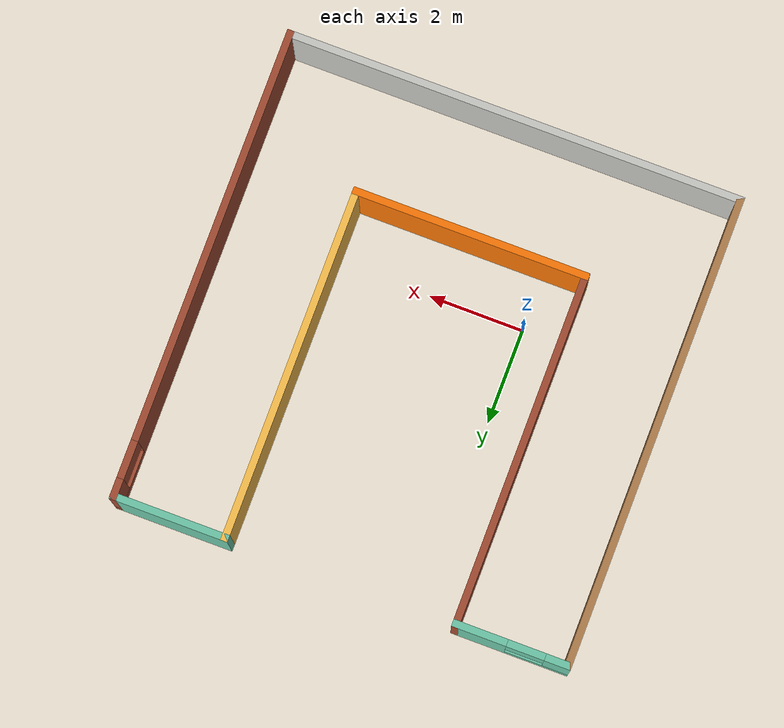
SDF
<?xml version='1.0'?>
<sdf version='1.6'>
  <model name='home_world'>
    <pose frame=''>1.57702 1.24886 0 0 -0 0</pose>
    <link name='Wall_25'>
      <pose frame=''>4.775 0 0 0 -0 1.5708</pose>
      <visual name='Wall_25_Visual_0'>
        <pose frame=''>-0.622531 0 1.25 0 -0 0</pose>
        <geometry>
          <box>
            <size>8.75494 0.15 2.5</size>
          </box>
        </geometry>
        <material>
          <script>
            <uri>file://media/materials/scripts/gazebo.material</uri>
            <name>Gazebo/Bricks</name>
          </script>
          <ambient>1 0.764706 0.305882 1</ambient>
        </material>
      </visual>
      <collision name='Wall_25_Collision_0'>
        <geometry>
          <box>
            <size>8.75494 0.15 2.5</size>
          </box>
        </geometry>
        <pose frame=''>-0.622531 0 1.25 0 -0 0</pose>
      </collision>
      <visual name='Wall_25_Visual_1'>
        <pose frame=''>4.37747 0 0.25 0 -0 0</pose>
        <geometry>
          <box>
            <size>1.24506 0.15 0.5</size>
          </box>
        </geometry>
        <material>
          <script>
            <uri>file://media/materials/scripts/gazebo.material</uri>
            <name>Gazebo/Bricks</name>
          </script>
          <ambient>1 0.764706 0.305882 1</ambient>
        </material>
      </visual>
      <collision name='Wall_25_Collision_1'>
        <geometry>
          <box>
            <size>1.24506 0.15 0.5</size>
          </box>
        </geometry>
        <pose frame=''>4.37747 0 0.25 0 -0 0</pose>
      </collision>
      <visual name='Wall_25_Visual_2'>
        <pose frame=''>4.77747 0 1.5 0 -0 0</pose>
        <geometry>
          <box>
            <size>0.445062 0.15 2</size>
          </box>
        </geometry>
        <material>
          <script>
            <uri>file://media/materials/scripts/gazebo.material</uri>
            <name>Gazebo/Bricks</name>
          </script>
          <ambient>1 0.764706 0.305882 1</ambient>
        </material>
      </visual>
      <collision name='Wall_25_Collision_2'>
        <geometry>
          <box>
            <size>0.445062 0.15 2</size>
          </box>
        </geometry>
        <pose frame=''>4.77747 0 1.5 0 -0 0</pose>
      </collision>
      <visual name='Wall_25_Visual_3'>
        <pose frame=''>4.15494 0 1.9 0 -0 0</pose>
        <geometry>
          <box>
            <size>0.8 0.15 1.2</size>
          </box>
        </geometry>
        <material>
          <script>
            <uri>file://media/materials/scripts/gazebo.material</uri>
            <name>Gazebo/Bricks</name>
          </script>
          <ambient>1 0.764706 0.305882 1</ambient>
        </material>
      </visual>
      <collision name='Wall_25_Collision_3'>
        <geometry>
          <box>
            <size>0.8 0.15 1.2</size>
          </box>
        </geometry>
        <pose frame=''>4.15494 0 1.9 0 -0 0</pose>
      </collision>
    </link>
    <link name='Wall_26'>
      <collision name='Wall_26_Collision'>
        <geometry>
          <box>
            <size>2.5 0.15 2.5</size>
          </box>
        </geometry>
        <pose frame=''>0 0 1.25 0 -0 0</pose>
      </collision>
      <visual name='Wall_26_Visual'>
        <pose frame=''>0 0 1.25 0 -0 0</pose>
        <geometry>
          <box>
            <size>2.5 0.15 2.5</size>
          </box>
        </geometry>
        <material>
          <script>
            <uri>file://media/materials/scripts/gazebo.material</uri>
            <name>Gazebo/Grey</name>
          </script>
          <ambient>0.435294 0.796078 0.67451 1</ambient>
        </material>
      </visual>
      <pose frame=''>3.6 4.925 0 0 -0 3.14159</pose>
    </link>
    <link name='Wall_27'>
      <collision name='Wall_27_Collision'>
        <geometry>
          <box>
            <size>7.5 0.15 2.5</size>
          </box>
        </geometry>
        <pose frame=''>0 0 1.25 0 -0 0</pose>
      </collision>
      <visual name='Wall_27_Visual'>
        <pose frame=''>0 0 1.25 0 -0 0</pose>
        <geometry>
          <box>
            <size>7.5 0.15 2.5</size>
          </box>
        </geometry>
        <material>
          <script>
            <uri>file://media/materials/scripts/gazebo.material</uri>
            <name>Gazebo/Grey</name>
          </script>
          <ambient>1 0.764706 0.305882 1</ambient>
        </material>
      </visual>
      <pose frame=''>2.425 1.25 0 0 0 -1.5708</pose>
    </link>
    <link name='Wall_28'>
      <collision name='Wall_28_Collision'>
        <geometry>
          <box>
            <size>5 0.15 2.5</size>
          </box>
        </geometry>
        <pose frame=''>0 0 1.25 0 -0 0</pose>
      </collision>
      <visual name='Wall_28_Visual'>
        <pose frame=''>0 0 1.25 0 -0 0</pose>
        <geometry>
          <box>
            <size>5 0.15 2.5</size>
          </box>
        </geometry>
        <material>
          <script>
            <uri>file://media/materials/scripts/gazebo.material</uri>
            <name>Gazebo/Grey</name>
          </script>
          <ambient>0.996078 0.47451 0.0196078 1</ambient>
        </material>
      </visual>
      <pose frame=''>0 -2.425 0 0 -0 3.14159</pose>
    </link>
    <link name='Wall_29'>
      <collision name='Wall_29_Collision'>
        <geometry>
          <box>
            <size>7.5 0.15 2.5</size>
          </box>
        </geometry>
        <pose frame=''>0 0 1.25 0 -0 0</pose>
      </collision>
      <visual name='Wall_29_Visual'>
        <pose frame=''>0 0 1.25 0 -0 0</pose>
        <geometry>
          <box>
            <size>7.5 0.15 2.5</size>
          </box>
        </geometry>
        <material>
          <script>
            <uri>file://media/materials/scripts/gazebo.material</uri>
            <name>Gazebo/Bricks</name>
          </script>
          <ambient>0.921569 0.807843 0.615686 1</ambient>
        </material>
      </visual>
      <pose frame=''>-2.425 1.25 0 0 -0 1.5708</pose>
    </link>
    <link name='Wall_36'>
      <pose frame=''>-3.6 4.925 0 0 -0 3.14159</pose>
      <visual name='Wall_36_Visual_0'>
        <pose frame=''>-0.67663 0 1.25 0 -0 0</pose>
        <geometry>
          <box>
            <size>1.14674 0.15 2.5</size>
          </box>
        </geometry>
        <material>
          <script>
            <uri>file://media/materials/scripts/gazebo.material</uri>
            <name>Gazebo/Grey</name>
          </script>
          <ambient>0.435294 0.796078 0.67451 1</ambient>
        </material>
      </visual>
      <collision name='Wall_36_Collision_0'>
        <geometry>
          <box>
            <size>1.14674 0.15 2.5</size>
          </box>
        </geometry>
        <pose frame=''>-0.67663 0 1.25 0 -0 0</pose>
      </collision>
      <visual name='Wall_36_Visual_1'>
        <pose frame=''>0.57337 0 0.25 0 -0 0</pose>
        <geometry>
          <box>
            <size>1.35326 0.15 0.5</size>
          </box>
        </geometry>
        <material>
          <script>
            <uri>file://media/materials/scripts/gazebo.material</uri>
            <name>Gazebo/Grey</name>
          </script>
          <ambient>0.435294 0.796078 0.67451 1</ambient>
        </material>
      </visual>
      <collision name='Wall_36_Collision_1'>
        <geometry>
          <box>
            <size>1.35326 0.15 0.5</size>
          </box>
        </geometry>
        <pose frame=''>0.57337 0 0.25 0 -0 0</pose>
      </collision>
      <visual name='Wall_36_Visual_2'>
        <pose frame=''>0.97337 0 1.5 0 -0 0</pose>
        <geometry>
          <box>
            <size>0.553259 0.15 2</size>
          </box>
        </geometry>
        <material>
          <script>
            <uri>file://media/materials/scripts/gazebo.material</uri>
            <name>Gazebo/Grey</name>
          </script>
          <ambient>0.435294 0.796078 0.67451 1</ambient>
        </material>
      </visual>
      <collision name='Wall_36_Collision_2'>
        <geometry>
          <box>
            <size>0.553259 0.15 2</size>
          </box>
        </geometry>
        <pose frame=''>0.97337 0 1.5 0 -0 0</pose>
      </collision>
      <visual name='Wall_36_Visual_3'>
        <pose frame=''>0.296741 0 1.9 0 -0 0</pose>
        <geometry>
          <box>
            <size>0.8 0.15 1.2</size>
          </box>
        </geometry>
        <material>
          <script>
            <uri>file://media/materials/scripts/gazebo.material</uri>
            <name>Gazebo/Grey</name>
          </script>
          <ambient>0.435294 0.796078 0.67451 1</ambient>
        </material>
      </visual>
      <collision name='Wall_36_Collision_3'>
        <geometry>
          <box>
            <size>0.8 0.15 1.2</size>
          </box>
        </geometry>
        <pose frame=''>0.296741 0 1.9 0 -0 0</pose>
      </collision>
    </link>
    <link name='Wall_37'>
      <collision name='Wall_37_Collision'>
        <geometry>
          <box>
            <size>10 0.15 2.5</size>
          </box>
        </geometry>
        <pose frame=''>0 0 1.25 0 -0 0</pose>
      </collision>
      <visual name='Wall_37_Visual'>
        <pose frame=''>0 0 1.25 0 -0 0</pose>
        <geometry>
          <box>
            <size>10 0.15 2.5</size>
          </box>
        </geometry>
        <material>
          <script>
            <uri>file://media/materials/scripts/gazebo.material</uri>
            <name>Gazebo/Wood</name>
          </script>
          <ambient>1 0.764706 0.305882 1</ambient>
        </material>
      </visual>
      <pose frame=''>-4.775 0 0 0 0 -1.5708</pose>
    </link>
    <link name='Wall_39'>
      <collision name='Wall_39_Collision'>
        <geometry>
          <box>
            <size>9.7 0.15 2.5</size>
          </box>
        </geometry>
        <pose frame=''>0 0 1.25 0 -0 0</pose>
      </collision>
      <visual name='Wall_39_Visual'>
        <pose frame=''>0 0 1.25 0 -0 0</pose>
        <geometry>
          <box>
            <size>9.7 0.15 2.5</size>
          </box>
        </geometry>
        <material>
          <script>
            <uri>file://media/materials/scripts/gazebo.material</uri>
            <name>Gazebo/CeilingTiled</name>
          </script>
          <ambient>1 1 1 1</ambient>
        </material>
      </visual>
      <pose frame=''>0 -4.925 0 0 -0 0</pose>
    </link>
    <static>1</static>
  </model>
</sdf>
